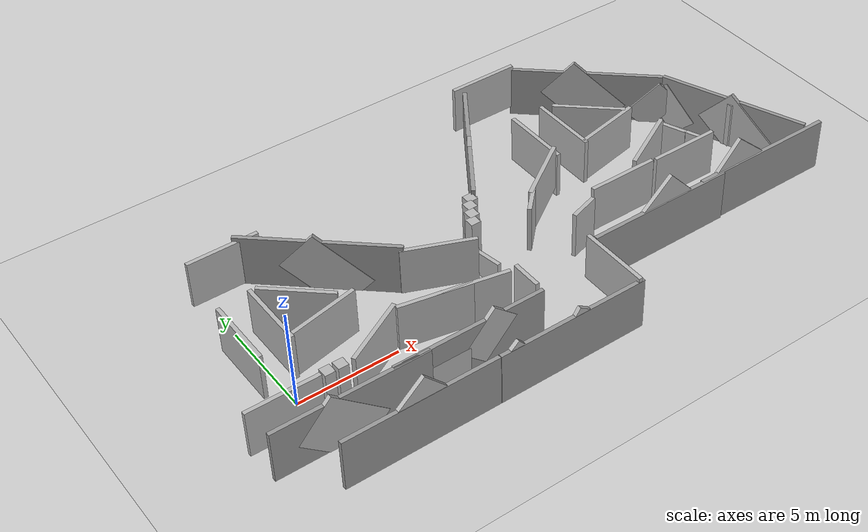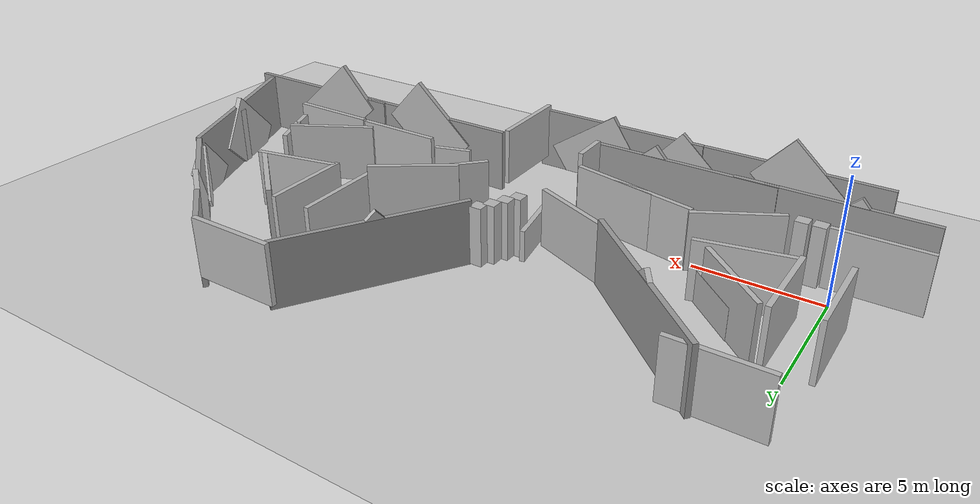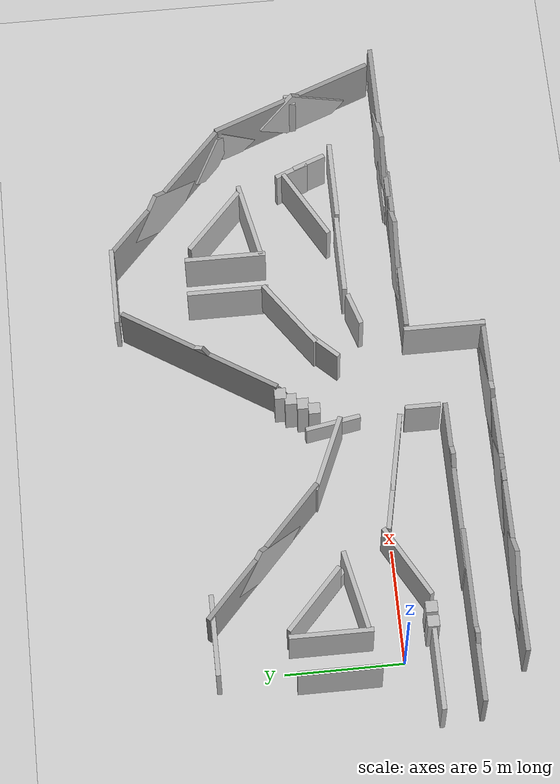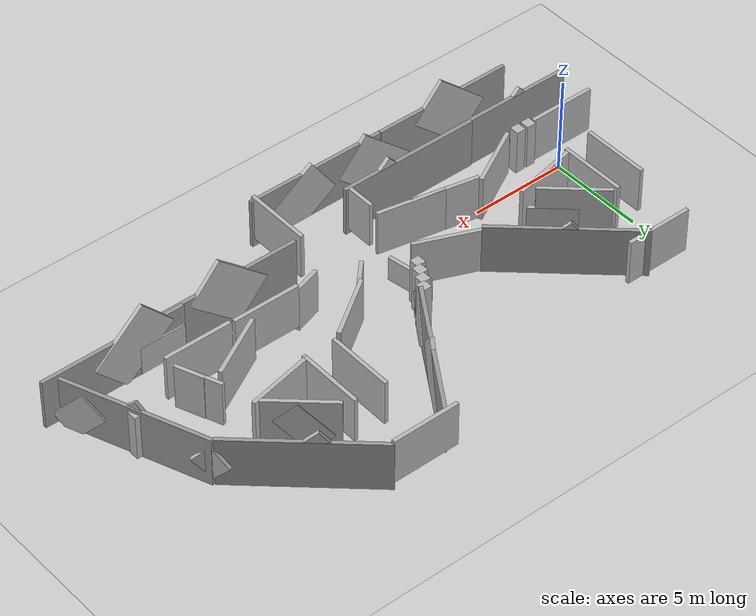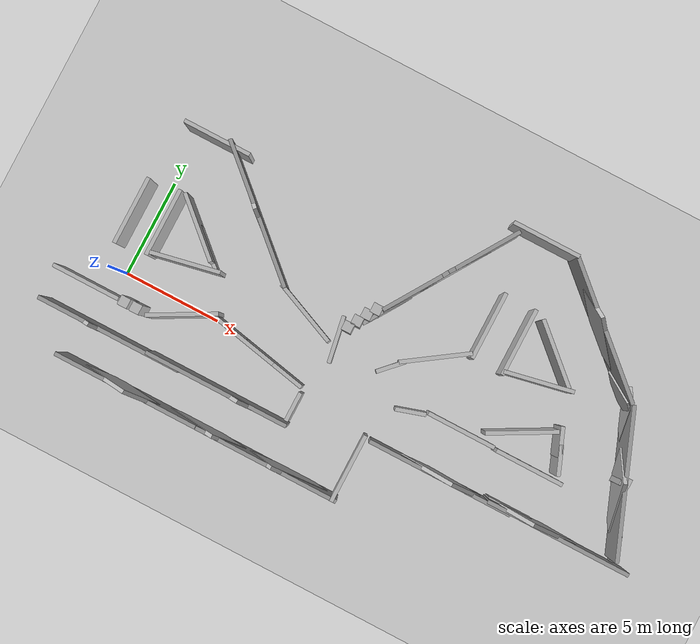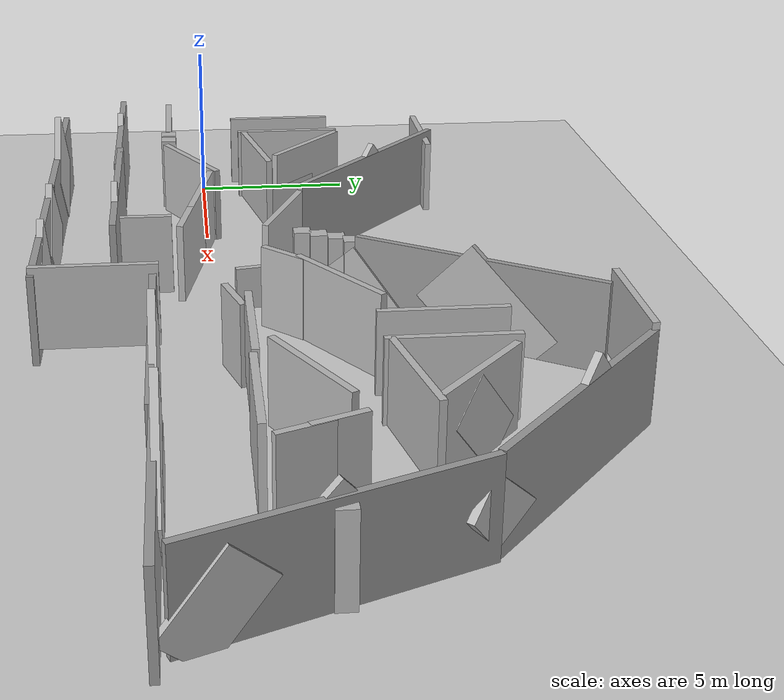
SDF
<sdf version="1.6">
 <world name="default">
  <model name="ground_plane">
   <static>1</static>
   <link name="link">
    <collision name="collision">
     <geometry><plane><normal>0 0 1</normal><size>100 100</size></plane></geometry>
     <surface><friction><ode><mu>100</mu><mu2>50</mu2></ode></friction></surface>
    </collision>
    <visual name="visual">
     <cast_shadows>0</cast_shadows>
     <geometry><plane><normal>0 0 1</normal><size>100 100</size></plane></geometry>
     <material>
      <script><uri>file://media/materials/scripts/gazebo.material</uri><name>Gazebo/Grey</name></script>
     </material>
    </visual>
   </link>
  </model>
  <model name="mywall_net3_clone">
   <static>1</static>
   <link name="link">
    <pose>0 0 1.2 0 -0 0</pose>
    <collision name="collision"><geometry><box><size>3.5 0.2 2.4</size></box></geometry></collision>
    <visual name="visual">
     <cast_shadows>0</cast_shadows>
     <geometry><box><size>3.5 0.2 2.4</size></box></geometry>
     <material>
      <script>
       <uri>model://mywall_net3/materials/scripts</uri>
       <uri>model://mywall_net3/materials/textures</uri>
       <name>vrc/mywall_net3</name>
      </script>
     </material>
    </visual>
   </link>
   <pose>-0.8 2.8 0 0 -0 1.57</pose>
  </model>
  <model name="mywall_net3_clone_0">
   <static>1</static>
   <link name="link">
    <pose>0 0 1.2 0 -0 0</pose>
    <collision name="collision"><geometry><box><size>3.5 0.2 2.4</size></box></geometry></collision>
    <visual name="visual">
     <cast_shadows>0</cast_shadows>
     <geometry><box><size>3.5 0.2 2.4</size></box></geometry>
     <material>
      <script>
       <uri>model://mywall_net3/materials/scripts</uri>
       <uri>model://mywall_net3/materials/textures</uri>
       <name>vrc/mywall_net3</name>
      </script>
     </material>
    </visual>
   </link>
   <pose>0.8 3 0 0 -0 1.57</pose>
  </model>
  <model name="mywall_net9">
   <static>1</static>
   <link name="link">
    <pose>0 0 1.2 0 -0 0</pose>
    <collision name="collision"><geometry><box><size>3.5 0.2 2.4</size></box></geometry></collision>
    <visual name="visual">
     <cast_shadows>0</cast_shadows>
     <geometry><box><size>3.5 0.2 2.4</size></box></geometry>
     <material>
      <script>
       <uri>model://mywall_net9/materials/scripts</uri>
       <uri>model://mywall_net9/materials/textures</uri>
       <name>vrc/mywall_net9</name>
      </script>
     </material>
    </visual>
   </link>
   <pose>2.6 1.8 0 0 -0 0.199999</pose>
  </model>
  <model name="mywall_net8">
   <static>1</static>
   <link name="link">
    <pose>0 0 1.2 0 -0 0</pose>
    <collision name="collision"><geometry><box><size>3.5 0.2 2.4</size></box></geometry></collision>
    <visual name="visual">
     <cast_shadows>0</cast_shadows>
     <geometry><box><size>3.5 0.2 2.4</size></box></geometry>
     <material>
      <script>
       <uri>model://mywall_net8/materials/scripts</uri>
       <uri>model://mywall_net8/materials/textures</uri>
       <name>vrc/mywall_net8</name>
      </script>
     </material>
    </visual>
   </link>
   <pose>-1.13585 -1.2099 0 0 -0 0</pose>
  </model>
  <model name="mywall1_0">
   <static>1</static>
   <link name="link">
    <pose>0 0 1.2 0 -0 0</pose>
    <collision name="collision"><geometry><box><size>3.5 0.2 2.4</size></box></geometry></collision>
    <visual name="visual">
     <cast_shadows>0</cast_shadows>
     <geometry><box><size>3.5 0.2 2.4</size></box></geometry>
     <material>
      <script>
       <uri>model://mywall1/materials/scripts</uri>
       <uri>model://mywall1/materials/textures</uri>
       <name>vrc/mywall1</name>
      </script>
     </material>
    </visual>
   </link>
   <pose>1.18748 7.74669 0 0 -0 0</pose>
  </model>
  <model name="grey_wall_clone_clone_clone_clone">
   <static>1</static>
   <link name="link">
    <pose>0 0 1.2 0 -0 0</pose>
    <collision name="collision"><geometry><box><size>7.5 0.2 2.8</size></box></geometry></collision>
    <visual name="visual">
     <cast_shadows>0</cast_shadows>
     <geometry><box><size>7.5 0.2 2.8</size></box></geometry>
     <material>
      <script>
       <uri>model://grey_wall/materials/scripts</uri>
       <uri>model://grey_wall/materials/textures</uri>
       <name>vrc/grey_wall</name>
      </script>
     </material>
    </visual>
   </link>
   <pose>4.57876 5.44143 0 0 0 -0.735</pose>
  </model>
  <model name="mywall_net8_clone_clone_0">
   <static>1</static>
   <link name="link">
    <pose>0 0 1.2 0 -0 0</pose>
    <collision name="collision"><geometry><box><size>3.5 0.2 2.4</size></box></geometry></collision>
    <visual name="visual">
     <cast_shadows>0</cast_shadows>
     <geometry><box><size>3.5 0.2 2.4</size></box></geometry>
     <material>
      <script>
       <uri>model://mywall_net8/materials/scripts</uri>
       <uri>model://mywall_net8/materials/textures</uri>
       <name>vrc/mywall_net8</name>
      </script>
     </material>
    </visual>
   </link>
   <pose>3.62528 -0.456702 0 0 -0 0.5</pose>
  </model>
  <model name="mypillar_1_clone">
   <static>1</static>
   <link name="link">
    <pose>0 0 1.2 0 -0 0</pose>
    <collision name="collision"><geometry><box><size>0.5 0.5 2.4</size></box></geometry></collision>
    <visual name="visual">
     <cast_shadows>0</cast_shadows>
     <geometry><box><size>0.5 0.5 2.4</size></box></geometry>
     <material>
      <script>
       <uri>model://mypillar/materials/scripts</uri>
       <uri>model://mypillar/materials/textures</uri>
       <name>vrc/mypillar</name>
      </script>
     </material>
    </visual>
   </link>
   <pose>0.920022 -1.2 0 0 -0 0</pose>
  </model>
  <model name="mypillar_1_clone_0">
   <static>1</static>
   <link name="link">
    <pose>0 0 1.2 0 -0 0</pose>
    <collision name="collision"><geometry><box><size>0.5 0.5 2.4</size></box></geometry></collision>
    <visual name="visual">
     <cast_shadows>0</cast_shadows>
     <geometry><box><size>0.5 0.5 2.4</size></box></geometry>
     <material>
      <script>
       <uri>model://mypillar/materials/scripts</uri>
       <uri>model://mypillar/materials/textures</uri>
       <name>vrc/mypillar</name>
      </script>
     </material>
    </visual>
   </link>
   <pose>1.54699 -1.2 0 0 -0 0</pose>
  </model>
  <model name="mywall_net5_0">
   <static>1</static>
   <link name="link">
    <pose>0 0 1.2 0 -0 0</pose>
    <collision name="collision"><geometry><box><size>3.5 0.2 2.4</size></box></geometry></collision>
    <visual name="visual">
     <cast_shadows>0</cast_shadows>
     <geometry><box><size>3.5 0.2 2.4</size></box></geometry>
     <material>
      <script>
       <uri>model://mywall_net5/materials/scripts</uri>
       <uri>model://mywall_net5/materials/textures</uri>
       <name>vrc/mywall_net5</name>
      </script>
     </material>
    </visual>
   </link>
   <pose>20.1 4.60268 0 0 -0 0.2</pose>
  </model>
  <model name="mywall_net9_0_clone">
   <static>1</static>
   <link name="link">
    <pose>0 0 1.2 0 -0 0</pose>
    <collision name="collision"><geometry><box><size>3.5 0.2 2.4</size></box></geometry></collision>
    <visual name="visual">
     <cast_shadows>0</cast_shadows>
     <geometry><box><size>3.5 0.2 2.4</size></box></geometry>
     <material>
      <script>
       <uri>model://mywall_net9/materials/scripts</uri>
       <uri>model://mywall_net9/materials/textures</uri>
       <name>vrc/mywall_net9</name>
      </script>
     </material>
    </visual>
   </link>
   <pose>18.4091 5.82039 0 0 -0 1.57</pose>
  </model>
  <model name="mywall_net9_0_clone_0">
   <static>1</static>
   <link name="link">
    <pose>0 0 1.2 0 -0 0</pose>
    <collision name="collision"><geometry><box><size>3.5 0.2 2.4</size></box></geometry></collision>
    <visual name="visual">
     <cast_shadows>0</cast_shadows>
     <geometry><box><size>3.5 0.2 2.4</size></box></geometry>
     <material>
      <script>
       <uri>model://mywall_net9/materials/scripts</uri>
       <uri>model://mywall_net9/materials/textures</uri>
       <name>vrc/mywall_net9</name>
      </script>
     </material>
    </visual>
   </link>
   <pose>16.7773 5.8484 0 0 -0 1.57</pose>
  </model>
  <model name="mywall_net3_clone_clone_clone">
   <static>1</static>
   <link name="link">
    <pose>0 0 1.2 0 -0 0</pose>
    <collision name="collision"><geometry><box><size>3.5 0.2 2.4</size></box></geometry></collision>
    <visual name="visual">
     <cast_shadows>0</cast_shadows>
     <geometry><box><size>3.5 0.2 2.4</size></box></geometry>
     <material>
      <script>
       <uri>model://mywall_net3/materials/scripts</uri>
       <uri>model://mywall_net3/materials/textures</uri>
       <name>vrc/mywall_net3</name>
      </script>
     </material>
    </visual>
   </link>
   <pose>15.2159 3.31968 2.8 3.14 1e-06 0.6</pose>
  </model>
  <model name="grey_wall_0_clone_clone">
   <static>1</static>
   <link name="link">
    <pose>0 0 1.2 0 -0 0</pose>
    <collision name="collision"><geometry><box><size>7.5 0.2 2.8</size></box></geometry></collision>
    <visual name="visual">
     <cast_shadows>0</cast_shadows>
     <geometry><box><size>7.5 0.2 2.8</size></box></geometry>
     <material>
      <script>
       <uri>model://grey_wall/materials/scripts</uri>
       <uri>model://grey_wall/materials/textures</uri>
       <name>vrc/grey_wall</name>
      </script>
     </material>
    </visual>
   </link>
   <pose>13.9841 7.31333 0 0 -0 1</pose>
  </model>
  <model name="mywall_net8_clone">
   <static>1</static>
   <link name="link">
    <pose>0 0 1.2 0 -0 0</pose>
    <collision name="collision"><geometry><box><size>3.5 0.2 2.4</size></box></geometry></collision>
    <visual name="visual">
     <cast_shadows>0</cast_shadows>
     <geometry><box><size>3.5 0.2 2.4</size></box></geometry>
     <material>
      <script>
       <uri>model://mywall_net8/materials/scripts</uri>
       <uri>model://mywall_net8/materials/textures</uri>
       <name>vrc/mywall_net8</name>
      </script>
     </material>
    </visual>
   </link>
   <pose>17.2655 10.6912 2.8 -3.14018 0 0</pose>
  </model>
  <model name="grey_wall_clone_clone_clone_clone_0">
   <static>1</static>
   <link name="link">
    <pose>0 0 1.2 0 -0 0</pose>
    <collision name="collision"><geometry><box><size>7.5 0.2 2.8</size></box></geometry></collision>
    <visual name="visual">
     <cast_shadows>0</cast_shadows>
     <geometry><box><size>7.5 0.2 2.8</size></box></geometry>
     <material>
      <script>
       <uri>model://grey_wall/materials/scripts</uri>
       <uri>model://grey_wall/materials/textures</uri>
       <name>vrc/grey_wall</name>
      </script>
     </material>
    </visual>
   </link>
   <pose>21.7169 8.20586 0 0 0 -0.735</pose>
  </model>
  <model name="mywall_net8_clone_clone_clone_clone">
   <static>1</static>
   <link name="link">
    <pose>0 0 1.2 0 -0 0</pose>
    <collision name="collision"><geometry><box><size>3.5 0.2 2.4</size></box></geometry></collision>
    <visual name="visual">
     <cast_shadows>0</cast_shadows>
     <geometry><box><size>3.5 0.2 2.4</size></box></geometry>
     <material>
      <script>
       <uri>model://mywall_net8/materials/scripts</uri>
       <uri>model://mywall_net8/materials/textures</uri>
       <name>vrc/mywall_net8</name>
      </script>
     </material>
    </visual>
   </link>
   <pose>20.4573 2.1 2.8 3.14 -0 0.5</pose>
  </model>
  <model name="mywall_net0_2_clone">
   <static>1</static>
   <link name="link">
    <pose>0 0 1.2 0 -0 0</pose>
    <collision name="collision"><geometry><box><size>1.5 0.2 2.4</size></box></geometry></collision>
    <visual name="visual">
     <cast_shadows>0</cast_shadows>
     <geometry><box><size>1.5 0.2 2.4</size></box></geometry>
     <material>
      <script>
       <uri>model://mywall_net0/materials/scripts</uri>
       <uri>model://mywall_net0/materials/textures</uri>
       <name>vrc/mywall_net0</name>
      </script>
     </material>
    </visual>
   </link>
   <pose>22.357 2.55704 0 0 0 -1.2</pose>
  </model>
  <model name="mywall_net0_2_clone_0">
   <static>1</static>
   <link name="link">
    <pose>0 0 1.2 0 -0 0</pose>
    <collision name="collision"><geometry><box><size>1.5 0.2 2.4</size></box></geometry></collision>
    <visual name="visual">
     <cast_shadows>0</cast_shadows>
     <geometry><box><size>1.5 0.2 2.4</size></box></geometry>
     <material>
      <script>
       <uri>model://mywall_net0/materials/scripts</uri>
       <uri>model://mywall_net0/materials/textures</uri>
       <name>vrc/mywall_net0</name>
      </script>
     </material>
    </visual>
   </link>
   <pose>22.7032 1.75094 0 0 0 -1.2</pose>
  </model>
  <model name="grey_wall_clone_clone_clone_clone_0_clone_clone">
   <static>1</static>
   <link name="link">
    <pose>0 0 1.2 0 -0 0</pose>
    <collision name="collision"><geometry><box><size>7.5 0.2 2.8</size></box></geometry></collision>
    <visual name="visual">
     <cast_shadows>0</cast_shadows>
     <geometry><box><size>7.5 0.2 2.8</size></box></geometry>
     <material>
      <script>
       <uri>model://grey_wall/materials/scripts</uri>
       <uri>model://grey_wall/materials/textures</uri>
       <name>vrc/grey_wall</name>
      </script>
     </material>
    </visual>
   </link>
   <pose>25.9236 2.21742 0 0 0 -1.2</pose>
  </model>
  <model name="mywall0_clone">
   <static>1</static>
   <link name="link">
    <pose>0 0 1.2 0 -0 0</pose>
    <collision name="collision"><geometry><box><size>3.5 0.2 2.4</size></box></geometry></collision>
    <visual name="visual">
     <cast_shadows>0</cast_shadows>
     <geometry><box><size>3.5 0.2 2.4</size></box></geometry>
     <material>
      <script>
       <uri>model://mywall0/materials/scripts</uri>
       <uri>model://mywall0/materials/textures</uri>
       <name>vrc/mywall0</name>
      </script>
     </material>
    </visual>
   </link>
   <pose>6.82844 -0.184627 0 0 0 -0.2</pose>
  </model>
  <model name="mywall0_clone_clone">
   <static>1</static>
   <link name="link">
    <pose>0 0 1.2 0 -0 0</pose>
    <collision name="collision"><geometry><box><size>3.5 0.2 2.4</size></box></geometry></collision>
    <visual name="visual">
     <cast_shadows>0</cast_shadows>
     <geometry><box><size>3.5 0.2 2.4</size></box></geometry>
     <material>
      <script>
       <uri>model://mywall0/materials/scripts</uri>
       <uri>model://mywall0/materials/textures</uri>
       <name>vrc/mywall0</name>
      </script>
     </material>
    </visual>
   </link>
   <pose>8.52847 -0.528615 0 0 0 -0.2</pose>
  </model>
  <model name="mywall_net4_1_clone_0_clone_clone_clone">
   <static>1</static>
   <link name="link">
    <pose>0 0 1.2 0 -0 0</pose>
    <collision name="collision"><geometry><box><size>3.5 0.2 2.4</size></box></geometry></collision>
    <visual name="visual">
     <cast_shadows>0</cast_shadows>
     <geometry><box><size>3.5 0.2 2.4</size></box></geometry>
     <material>
      <script>
       <uri>model://mywall_net4/materials/scripts</uri>
       <uri>model://mywall_net4/materials/textures</uri>
       <name>vrc/mywall_net4</name>
      </script>
     </material>
    </visual>
   </link>
   <pose>21.5223 0.789609 2.8 3.14 -0 0</pose>
  </model>
  <model name="mywall_net4_1_clone_0_clone_clone_clone_clone">
   <static>1</static>
   <link name="link">
    <pose>0 0 1.2 0 -0 0</pose>
    <collision name="collision"><geometry><box><size>3.5 0.2 2.4</size></box></geometry></collision>
    <visual name="visual">
     <cast_shadows>0</cast_shadows>
     <geometry><box><size>3.5 0.2 2.4</size></box></geometry>
     <material>
      <script>
       <uri>model://mywall_net4/materials/scripts</uri>
       <uri>model://mywall_net4/materials/textures</uri>
       <name>vrc/mywall_net4</name>
      </script>
     </material>
    </visual>
   </link>
   <pose>17.8818 0.850706 2.8 3.14 -0 0</pose>
  </model>
  <model name="mywall_net0_3">
   <static>1</static>
   <link name="link">
    <pose>0 0 1.2 0 -0 0</pose>
    <collision name="collision"><geometry><box><size>1.5 0.2 2.4</size></box></geometry></collision>
    <visual name="visual">
     <cast_shadows>0</cast_shadows>
     <geometry><box><size>1.5 0.2 2.4</size></box></geometry>
     <material>
      <script>
       <uri>model://mywall_net0/materials/scripts</uri>
       <uri>model://mywall_net0/materials/textures</uri>
       <name>vrc/mywall_net0</name>
      </script>
     </material>
    </visual>
   </link>
   <pose>15.3715 0.509738 0 0 -0 0.3</pose>
  </model>
  <model name="mywall_net2_1_clone">
   <static>1</static>
   <link name="link">
    <pose>0 0 1.2 0 -0 0</pose>
    <collision name="collision"><geometry><box><size>3.5 0.2 2.4</size></box></geometry></collision>
    <visual name="visual">
     <cast_shadows>0</cast_shadows>
     <geometry><box><size>3.5 0.2 2.4</size></box></geometry>
     <material>
      <script>
       <uri>model://mywall_net2/materials/scripts</uri>
       <uri>model://mywall_net2/materials/textures</uri>
       <name>vrc/mywall_net2</name>
      </script>
     </material>
    </visual>
   </link>
   <pose>8.7594 2.32284 0 0 0 -0.4</pose>
  </model>
  <model name="mypillar_1_clone_0_clone">
   <static>1</static>
   <link name="link">
    <pose>0 0 1.2 0 -0 0</pose>
    <collision name="collision"><geometry><box><size>0.5 0.5 2.4</size></box></geometry></collision>
    <visual name="visual">
     <cast_shadows>0</cast_shadows>
     <geometry><box><size>0.5 0.5 2.4</size></box></geometry>
     <material>
      <script>
       <uri>model://mypillar/materials/scripts</uri>
       <uri>model://mypillar/materials/textures</uri>
       <name>vrc/mypillar</name>
      </script>
     </material>
    </visual>
   </link>
   <pose>10.8687 2.68887 0 0 -0 0</pose>
  </model>
  <model name="mypillar_1_clone_0_clone_0">
   <static>1</static>
   <link name="link">
    <pose>0 0 1.2 0 -0 0</pose>
    <collision name="collision"><geometry><box><size>0.5 0.5 2.4</size></box></geometry></collision>
    <visual name="visual">
     <cast_shadows>0</cast_shadows>
     <geometry><box><size>0.5 0.5 2.4</size></box></geometry>
     <material>
      <script>
       <uri>model://mypillar/materials/scripts</uri>
       <uri>model://mypillar/materials/textures</uri>
       <name>vrc/mypillar</name>
      </script>
     </material>
    </visual>
   </link>
   <pose>11.1303 3.14665 0 0 -0 0</pose>
  </model>
  <model name="mypillar_1_clone_0_clone_1">
   <static>1</static>
   <link name="link">
    <pose>0 0 1.2 0 -0 0</pose>
    <collision name="collision"><geometry><box><size>0.5 0.5 2.4</size></box></geometry></collision>
    <visual name="visual">
     <cast_shadows>0</cast_shadows>
     <geometry><box><size>0.5 0.5 2.4</size></box></geometry>
     <material>
      <script>
       <uri>model://mypillar/materials/scripts</uri>
       <uri>model://mypillar/materials/textures</uri>
       <name>vrc/mypillar</name>
      </script>
     </material>
    </visual>
   </link>
   <pose>11.3906 3.64228 0 0 -0 0</pose>
  </model>
  <model name="mypillar_1_clone_0_clone_2">
   <static>1</static>
   <link name="link">
    <pose>0 0 1.2 0 -0 0</pose>
    <collision name="collision"><geometry><box><size>0.5 0.5 2.4</size></box></geometry></collision>
    <visual name="visual">
     <cast_shadows>0</cast_shadows>
     <geometry><box><size>0.5 0.5 2.4</size></box></geometry>
     <material>
      <script>
       <uri>model://mypillar/materials/scripts</uri>
       <uri>model://mypillar/materials/textures</uri>
       <name>vrc/mypillar</name>
      </script>
     </material>
    </visual>
   </link>
   <pose>11.6902 4.0623 0 0 -0 0</pose>
  </model>
  <model name="mywall_net11_0_clone_clone">
   <static>1</static>
   <link name="link">
    <pose>0 0 1.2 0 -0 0</pose>
    <collision name="collision"><geometry><box><size>1.5 0.2 2.4</size></box></geometry></collision>
    <visual name="visual">
     <cast_shadows>0</cast_shadows>
     <geometry><box><size>1.5 0.2 2.4</size></box></geometry>
     <material>
      <script>
       <uri>model://mywall_net11/materials/scripts</uri>
       <uri>model://mywall_net11/materials/textures</uri>
       <name>vrc/mywall_net11</name>
      </script>
     </material>
    </visual>
   </link>
   <pose>10.3494 -1.85373 2.8 3.14 0 1.57</pose>
  </model>
  <model name="mywall_net2_1_clone_0_clone">
   <static>1</static>
   <link name="link">
    <pose>0 0 1.2 0 -0 0</pose>
    <collision name="collision"><geometry><box><size>3.5 0.2 2.4</size></box></geometry></collision>
    <visual name="visual">
     <cast_shadows>0</cast_shadows>
     <geometry><box><size>3.5 0.2 2.4</size></box></geometry>
     <material>
      <script>
       <uri>model://mywall_net2/materials/scripts</uri>
       <uri>model://mywall_net2/materials/textures</uri>
       <name>vrc/mywall_net2</name>
      </script>
     </material>
    </visual>
   </link>
   <pose>14 -3.20841 2.8 3.14 -1e-06 1.57</pose>
  </model>
  <model name="grey_wall_1">
   <static>1</static>
   <link name="link">
    <pose>0 0 1.2 0 -0 0</pose>
    <collision name="collision"><geometry><box><size>7.5 0.2 2.8</size></box></geometry></collision>
    <visual name="visual">
     <cast_shadows>0</cast_shadows>
     <geometry><box><size>7.5 0.2 2.8</size></box></geometry>
     <material>
      <script>
       <uri>model://grey_wall/materials/scripts</uri>
       <uri>model://grey_wall/materials/textures</uri>
       <name>vrc/grey_wall</name>
      </script>
     </material>
    </visual>
   </link>
   <pose>18.0374 -1.61457 0 0 -0 0</pose>
  </model>
  <model name="grey_wall_2">
   <static>1</static>
   <link name="link">
    <pose>0 0 1.2 0 -0 0</pose>
    <collision name="collision"><geometry><box><size>7.5 0.2 2.8</size></box></geometry></collision>
    <visual name="visual">
     <cast_shadows>0</cast_shadows>
     <geometry><box><size>7.5 0.2 2.8</size></box></geometry>
     <material>
      <script>
       <uri>model://grey_wall/materials/scripts</uri>
       <uri>model://grey_wall/materials/textures</uri>
       <name>vrc/grey_wall</name>
      </script>
     </material>
    </visual>
   </link>
   <pose>24.2897 -1.53015 0 0 -0 0</pose>
  </model>
  <model name="grey_wall_2_clone">
   <static>1</static>
   <link name="link">
    <pose>0 0 1.2 0 -0 0</pose>
    <collision name="collision"><geometry><box><size>7.5 0.2 2.8</size></box></geometry></collision>
    <visual name="visual">
     <cast_shadows>0</cast_shadows>
     <geometry><box><size>7.5 0.2 2.8</size></box></geometry>
     <material>
      <script>
       <uri>model://grey_wall/materials/scripts</uri>
       <uri>model://grey_wall/materials/textures</uri>
       <name>vrc/grey_wall</name>
      </script>
     </material>
    </visual>
   </link>
   <pose>6.72766 -2.82714 0 0 -0 0</pose>
  </model>
  <model name="grey_wall_2_clone_0">
   <static>1</static>
   <link name="link">
    <pose>0 0 1.2 0 -0 0</pose>
    <collision name="collision"><geometry><box><size>7.5 0.2 2.8</size></box></geometry></collision>
    <visual name="visual">
     <cast_shadows>0</cast_shadows>
     <geometry><box><size>7.5 0.2 2.8</size></box></geometry>
     <material>
      <script>
       <uri>model://grey_wall/materials/scripts</uri>
       <uri>model://grey_wall/materials/textures</uri>
       <name>vrc/grey_wall</name>
      </script>
     </material>
    </visual>
   </link>
   <pose>0.993119 -2.88058 0 0 -0 0</pose>
  </model>
  <model name="grey_wall_2_clone_1">
   <static>1</static>
   <link name="link">
    <pose>0 0 1.2 0 -0 0</pose>
    <collision name="collision"><geometry><box><size>7.5 0.2 2.8</size></box></geometry></collision>
    <visual name="visual">
     <cast_shadows>0</cast_shadows>
     <geometry><box><size>7.5 0.2 2.8</size></box></geometry>
     <material>
      <script>
       <uri>model://grey_wall/materials/scripts</uri>
       <uri>model://grey_wall/materials/textures</uri>
       <name>vrc/grey_wall</name>
      </script>
     </material>
    </visual>
   </link>
   <pose>10.4704 -4.87772 0 0 -0 0</pose>
  </model>
  <model name="grey_wall_2_clone_2">
   <static>1</static>
   <link name="link">
    <pose>0 0 1.2 0 -0 0</pose>
    <collision name="collision"><geometry><box><size>7.5 0.2 2.8</size></box></geometry></collision>
    <visual name="visual">
     <cast_shadows>0</cast_shadows>
     <geometry><box><size>7.5 0.2 2.8</size></box></geometry>
     <material>
      <script>
       <uri>model://grey_wall/materials/scripts</uri>
       <uri>model://grey_wall/materials/textures</uri>
       <name>vrc/grey_wall</name>
      </script>
     </material>
    </visual>
   </link>
   <pose>2.94832 -4.87324 0 0 -0 0</pose>
  </model>
  <model name="mywall_net11">
   <static>1</static>
   <link name="link">
    <pose>0 0 1.2 0 -0 0</pose>
    <collision name="collision"><geometry><box><size>1.5 0.2 2.4</size></box></geometry></collision>
    <visual name="visual">
     <cast_shadows>0</cast_shadows>
     <geometry><box><size>1.5 0.2 2.4</size></box></geometry>
     <material>
      <script>
       <uri>model://mywall_net11/materials/scripts</uri>
       <uri>model://mywall_net11/materials/textures</uri>
       <name>vrc/mywall_net11</name>
      </script>
     </material>
    </visual>
   </link>
   <pose>4.268 -2.8534 0.8 0 1.57 0</pose>
  </model>
  <model name="mywall_net2">
   <static>1</static>
   <link name="link">
    <pose>0 0 1.2 0 -0 0</pose>
    <collision name="collision"><geometry><box><size>3.5 0.2 2.4</size></box></geometry></collision>
    <visual name="visual">
     <cast_shadows>0</cast_shadows>
     <geometry><box><size>3.5 0.2 2.4</size></box></geometry>
     <material>
      <script>
       <uri>model://mywall_net2/materials/scripts</uri>
       <uri>model://mywall_net2/materials/textures</uri>
       <name>vrc/mywall_net2</name>
      </script>
     </material>
    </visual>
   </link>
   <pose>-0.288156 -2.9 -4e-06 0 0.734999 0</pose>
  </model>
  <model name="mywall_net5_clone_0">
   <static>1</static>
   <link name="link">
    <pose>0 0 1.2 0 -0 0</pose>
    <collision name="collision"><geometry><box><size>3.5 0.2 2.4</size></box></geometry></collision>
    <visual name="visual">
     <cast_shadows>0</cast_shadows>
     <geometry><box><size>3.5 0.2 2.4</size></box></geometry>
     <material>
      <script>
       <uri>model://mywall_net5/materials/scripts</uri>
       <uri>model://mywall_net5/materials/textures</uri>
       <name>vrc/mywall_net5</name>
      </script>
     </material>
    </visual>
   </link>
   <pose>3.3952 -4.85 0.799996 0 -0.734999 0</pose>
  </model>
  <model name="mywall_net11_clone">
   <static>1</static>
   <link name="link">
    <pose>0 0 1.2 0 -0 0</pose>
    <collision name="collision"><geometry><box><size>1.5 0.2 2.4</size></box></geometry></collision>
    <visual name="visual">
     <cast_shadows>0</cast_shadows>
     <geometry><box><size>1.5 0.2 2.4</size></box></geometry>
     <material>
      <script>
       <uri>model://mywall_net11/materials/scripts</uri>
       <uri>model://mywall_net11/materials/textures</uri>
       <name>vrc/mywall_net11</name>
      </script>
     </material>
    </visual>
   </link>
   <pose>6.86741 -2.84387 0.799997 0 0.735 0</pose>
  </model>
  <model name="mywall_net8_clone_0">
   <static>1</static>
   <link name="link">
    <pose>0 0 1.2 0 -0 0</pose>
    <collision name="collision"><geometry><box><size>3.5 0.2 2.4</size></box></geometry></collision>
    <visual name="visual">
     <cast_shadows>0</cast_shadows>
     <geometry><box><size>3.5 0.2 2.4</size></box></geometry>
     <material>
      <script>
       <uri>model://mywall_net8/materials/scripts</uri>
       <uri>model://mywall_net8/materials/textures</uri>
       <name>vrc/mywall_net8</name>
      </script>
     </material>
    </visual>
   </link>
   <pose>7.92725 -4.85 -4e-06 0 -0.734999 0</pose>
  </model>
  <model name="mywall_net3">
   <static>1</static>
   <link name="link">
    <pose>0 0 1.2 0 -0 0</pose>
    <collision name="collision"><geometry><box><size>3.5 0.2 2.4</size></box></geometry></collision>
    <visual name="visual">
     <cast_shadows>0</cast_shadows>
     <geometry><box><size>3.5 0.2 2.4</size></box></geometry>
     <material>
      <script>
       <uri>model://mywall_net3/materials/scripts</uri>
       <uri>model://mywall_net3/materials/textures</uri>
       <name>vrc/mywall_net3</name>
      </script>
     </material>
    </visual>
   </link>
   <pose>10.8524 -4.85873 0 0 0.6 0</pose>
  </model>
  <model name="mywall_net4_1_clone_0_clone_clone_clone_clone_0">
   <static>1</static>
   <link name="link">
    <pose>0 0 1.2 0 -0 0</pose>
    <collision name="collision"><geometry><box><size>3.5 0.2 2.4</size></box></geometry></collision>
    <visual name="visual">
     <cast_shadows>0</cast_shadows>
     <geometry><box><size>3.5 0.2 2.4</size></box></geometry>
     <material>
      <script>
       <uri>model://mywall_net4/materials/scripts</uri>
       <uri>model://mywall_net4/materials/textures</uri>
       <name>vrc/mywall_net4</name>
      </script>
     </material>
    </visual>
   </link>
   <pose>24.0601 -1.45 2.8 3.14 0.734999 0</pose>
  </model>
  <model name="mywall_net4_1_clone_0_clone_clone_clone_clone_clone">
   <static>1</static>
   <link name="link">
    <pose>0 0 1.2 0 -0 0</pose>
    <collision name="collision"><geometry><box><size>3.5 0.2 2.4</size></box></geometry></collision>
    <visual name="visual">
     <cast_shadows>0</cast_shadows>
     <geometry><box><size>3.5 0.2 2.4</size></box></geometry>
     <material>
      <script>
       <uri>model://mywall_net4/materials/scripts</uri>
       <uri>model://mywall_net4/materials/textures</uri>
       <name>vrc/mywall_net4</name>
      </script>
     </material>
    </visual>
   </link>
   <pose>17.2577 -1.55591 2.8 3.14 -0.735 -0</pose>
  </model>
  <model name="mywall_net4">
   <static>1</static>
   <link name="link">
    <pose>0 0 1.2 0 -0 0</pose>
    <collision name="collision"><geometry><box><size>3.5 0.2 2.4</size></box></geometry></collision>
    <visual name="visual">
     <cast_shadows>0</cast_shadows>
     <geometry><box><size>3.5 0.2 2.4</size></box></geometry>
     <material>
      <script>
       <uri>model://mywall_net4/materials/scripts</uri>
       <uri>model://mywall_net4/materials/textures</uri>
       <name>vrc/mywall_net4</name>
      </script>
     </material>
    </visual>
   </link>
   <pose>4.2 5.75888 -2e-06 -0 0.735001 -0.735001</pose>
  </model>
  <model name="mywall_net4_1_clone_0_clone_clone_clone_0">
   <static>1</static>
   <link name="link">
    <pose>0 0 1.2 0 -0 0</pose>
    <collision name="collision"><geometry><box><size>3.5 0.2 2.4</size></box></geometry></collision>
    <visual name="visual">
     <cast_shadows>0</cast_shadows>
     <geometry><box><size>3.5 0.2 2.4</size></box></geometry>
     <material>
      <script>
       <uri>model://mywall_net4/materials/scripts</uri>
       <uri>model://mywall_net4/materials/textures</uri>
       <name>vrc/mywall_net4</name>
      </script>
     </material>
    </visual>
   </link>
   <pose>13.7189 6.89985 -3e-06 0 0.735 1</pose>
  </model>
  <model name="mywall_net1_1">
   <static>1</static>
   <link name="link">
    <pose>0 0 1.2 0 -0 0</pose>
    <collision name="collision"><geometry><box><size>1.5 0.2 2.4</size></box></geometry></collision>
    <visual name="visual">
     <cast_shadows>0</cast_shadows>
     <geometry><box><size>1.5 0.2 2.4</size></box></geometry>
     <material>
      <script>
       <uri>model://mywall_net1/materials/scripts</uri>
       <uri>model://mywall_net1/materials/textures</uri>
       <name>vrc/mywall_net1</name>
      </script>
     </material>
    </visual>
   </link>
   <pose>12.5726 5 -3e-06 0 -0.735 1</pose>
  </model>
  <model name="mywall_net3_clone_clone_clone_clone">
   <static>1</static>
   <link name="link">
    <pose>0 0 1.2 0 -0 0</pose>
    <collision name="collision"><geometry><box><size>3.5 0.2 2.4</size></box></geometry></collision>
    <visual name="visual">
     <cast_shadows>0</cast_shadows>
     <geometry><box><size>3.5 0.2 2.4</size></box></geometry>
     <material>
      <script>
       <uri>model://mywall_net3/materials/scripts</uri>
       <uri>model://mywall_net3/materials/textures</uri>
       <name>vrc/mywall_net3</name>
      </script>
     </material>
    </visual>
   </link>
   <pose>22.2234 7.73093 2 3.14 0.734999 -0.734999</pose>
  </model>
  <model name="mywall_net0">
   <static>1</static>
   <link name="link">
    <pose>0 0 1.2 0 -0 0</pose>
    <collision name="collision"><geometry><box><size>1.5 0.2 2.4</size></box></geometry></collision>
    <visual name="visual">
     <cast_shadows>0</cast_shadows>
     <geometry><box><size>1.5 0.2 2.4</size></box></geometry>
     <material>
      <script>
       <uri>model://mywall_net0/materials/scripts</uri>
       <uri>model://mywall_net0/materials/textures</uri>
       <name>vrc/mywall_net0</name>
      </script>
     </material>
    </visual>
   </link>
   <pose>23.5648 6.4 -2e-06 -0 0.735001 -0.735001</pose>
  </model>
  <model name="mywall_net10_0">
   <static>1</static>
   <link name="link">
    <pose>0 0 1.2 0 -0 0</pose>
    <collision name="collision"><geometry><box><size>1.5 0.2 2.4</size></box></geometry></collision>
    <visual name="visual">
     <cast_shadows>0</cast_shadows>
     <geometry><box><size>1.5 0.2 2.4</size></box></geometry>
     <material>
      <script>
       <uri>model://mywall_net10/materials/scripts</uri>
       <uri>model://mywall_net10/materials/textures</uri>
       <name>vrc/mywall_net10</name>
      </script>
     </material>
    </visual>
   </link>
   <pose>25.0172 4.47601 -3e-06 0 -0.735 -1.2</pose>
  </model>
  <model name="mywall_net11_clone_0">
   <static>1</static>
   <link name="link">
    <pose>0 0 1.2 0 -0 0</pose>
    <collision name="collision"><geometry><box><size>1.5 0.2 2.4</size></box></geometry></collision>
    <visual name="visual">
     <cast_shadows>0</cast_shadows>
     <geometry><box><size>1.5 0.2 2.4</size></box></geometry>
     <material>
      <script>
       <uri>model://mywall_net11/materials/scripts</uri>
       <uri>model://mywall_net11/materials/textures</uri>
       <name>vrc/mywall_net11</name>
      </script>
     </material>
    </visual>
   </link>
   <pose>23 -1.45175 0.8 0 -1.57 0</pose>
  </model>
  <model name="mywall_net10_0_clone_0">
   <static>1</static>
   <link name="link">
    <pose>0 0 1.2 0 -0 0</pose>
    <collision name="collision"><geometry><box><size>1.5 0.2 2.4</size></box></geometry></collision>
    <visual name="visual">
     <cast_shadows>0</cast_shadows>
     <geometry><box><size>1.5 0.2 2.4</size></box></geometry>
     <material>
      <script>
       <uri>model://mywall_net10/materials/scripts</uri>
       <uri>model://mywall_net10/materials/textures</uri>
       <name>vrc/mywall_net10</name>
      </script>
     </material>
    </visual>
   </link>
   <pose>27.3014 -1.07152 -3e-06 0 -0.735 -1.2</pose>
  </model>
  <model name="mywall_net6_1_clone_clone_0_clone">
   <static>1</static>
   <link name="link">
    <pose>0 0 1.2 0 -0 0</pose>
    <collision name="collision"><geometry><box><size>3.5 0.2 2.4</size></box></geometry></collision>
    <visual name="visual">
     <cast_shadows>0</cast_shadows>
     <geometry><box><size>3.5 0.2 2.4</size></box></geometry>
     <material>
      <script>
       <uri>model://mywall_net6/materials/scripts</uri>
       <uri>model://mywall_net6/materials/textures</uri>
       <name>vrc/mywall_net6</name>
      </script>
     </material>
    </visual>
   </link>
   <pose>25.7183 2.5 3e-06 -1e-06 0.739999 -1.2</pose>
  </model>
  <model name="mypillar_3_clone_3_clone">
   <static>1</static>
   <link name="link">
    <pose>0 0 1.2 0 -0 0</pose>
    <collision name="collision"><geometry><box><size>0.5 0.5 2.4</size></box></geometry></collision>
    <visual name="visual">
     <cast_shadows>0</cast_shadows>
     <geometry><box><size>0.5 0.5 2.4</size></box></geometry>
     <material>
      <script>
       <uri>model://mypillar/materials/scripts</uri>
       <uri>model://mypillar/materials/textures</uri>
       <name>vrc/mypillar</name>
      </script>
     </material>
    </visual>
   </link>
   <pose>25.9306 2.29014 0 0 -0 0</pose>
  </model>
  <model name="mywall_net11_0_clone_clone_clone_clone">
   <static>1</static>
   <link name="link">
    <pose>0 0 1.2 0 -0 0</pose>
    <collision name="collision"><geometry><box><size>1.5 0.2 2.4</size></box></geometry></collision>
    <visual name="visual">
     <cast_shadows>0</cast_shadows>
     <geometry><box><size>1.5 0.2 2.4</size></box></geometry>
     <material>
      <script>
       <uri>model://mywall_net11/materials/scripts</uri>
       <uri>model://mywall_net11/materials/textures</uri>
       <name>vrc/mywall_net11</name>
      </script>
     </material>
    </visual>
   </link>
   <pose>10.8358 0.726267 0.500002 -3.14108 1.57 -1.40001</pose>
  </model>
  <model name="mywall_net3_clone_0_clone">
   <static>1</static>
   <link name="link">
    <pose>0 0 1.2 0 -0 0</pose>
    <collision name="collision"><geometry><box><size>3.5 0.2 2.4</size></box></geometry></collision>
    <visual name="visual">
     <cast_shadows>0</cast_shadows>
     <geometry><box><size>3.5 0.2 2.4</size></box></geometry>
     <material>
      <script>
       <uri>model://mywall_net3/materials/scripts</uri>
       <uri>model://mywall_net3/materials/textures</uri>
       <name>vrc/mywall_net3</name>
      </script>
     </material>
    </visual>
   </link>
   <pose>2.36256 3.54459 0 0 0 -0.734999</pose>
  </model>
  <model name="mywall_net11_0_clone_clone_clone_clone_clone_clone">
   <static>1</static>
   <link name="link">
    <pose>0 0 1.2 0 -0 0</pose>
    <collision name="collision"><geometry><box><size>1.5 0.2 2.4</size></box></geometry></collision>
    <visual name="visual">
     <cast_shadows>0</cast_shadows>
     <geometry><box><size>1.5 0.2 2.4</size></box></geometry>
     <material>
      <script>
       <uri>model://mywall_net11/materials/scripts</uri>
       <uri>model://mywall_net11/materials/textures</uri>
       <name>vrc/mywall_net11</name>
      </script>
     </material>
    </visual>
   </link>
   <pose>3.96822 2.1 0.5 3.13985 1.57 -0.736179</pose>
  </model>
  <model name="mywall_net11_0_clone_clone_clone">
   <static>1</static>
   <link name="link">
    <pose>0 0 1.2 0 -0 0</pose>
    <collision name="collision"><geometry><box><size>1.5 0.2 2.4</size></box></geometry></collision>
    <visual name="visual">
     <cast_shadows>0</cast_shadows>
     <geometry><box><size>1.5 0.2 2.4</size></box></geometry>
     <material>
      <script>
       <uri>model://mywall_net11/materials/scripts</uri>
       <uri>model://mywall_net11/materials/textures</uri>
       <name>vrc/mywall_net11</name>
      </script>
     </material>
    </visual>
   </link>
   <pose>13.5473 1.96543 2.8 3.14 -2e-06 0.8</pose>
  </model>
  <model name="mywall_net9_0_clone_clone">
   <static>1</static>
   <link name="link">
    <pose>0 0 1.2 0 -0 0</pose>
    <collision name="collision"><geometry><box><size>3.5 0.2 2.4</size></box></geometry></collision>
    <visual name="visual">
     <cast_shadows>0</cast_shadows>
     <geometry><box><size>3.5 0.2 2.4</size></box></geometry>
     <material>
      <script>
       <uri>model://mywall_net9/materials/scripts</uri>
       <uri>model://mywall_net9/materials/textures</uri>
       <name>vrc/mywall_net9</name>
      </script>
     </material>
    </visual>
   </link>
   <pose>20.2176 6.14314 0 0 0 -0.735</pose>
  </model>
  <model name="mywall_net0_clone">
   <static>1</static>
   <link name="link">
    <pose>0 0 1.2 0 -0 0</pose>
    <collision name="collision"><geometry><box><size>1.5 0.2 2.4</size></box></geometry></collision>
    <visual name="visual">
     <cast_shadows>0</cast_shadows>
     <geometry><box><size>1.5 0.2 2.4</size></box></geometry>
     <material>
      <script>
       <uri>model://mywall_net0/materials/scripts</uri>
       <uri>model://mywall_net0/materials/textures</uri>
       <name>vrc/mywall_net0</name>
      </script>
     </material>
    </visual>
   </link>
   <pose>19.5536 6.77517 -2e-06 -0 0.735001 -0.735001</pose>
  </model>
 </world>
</sdf>
